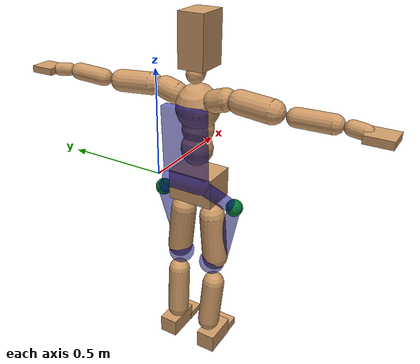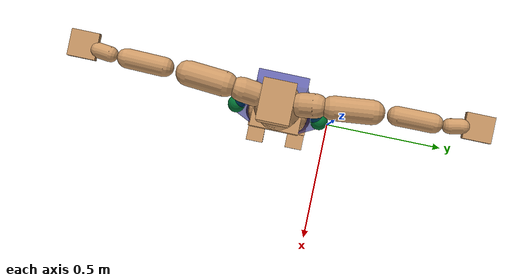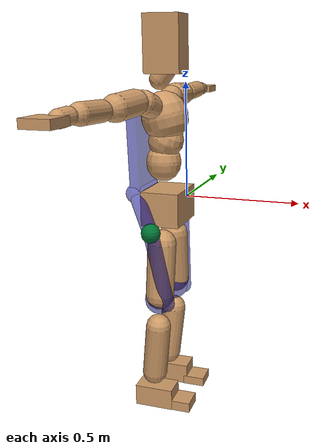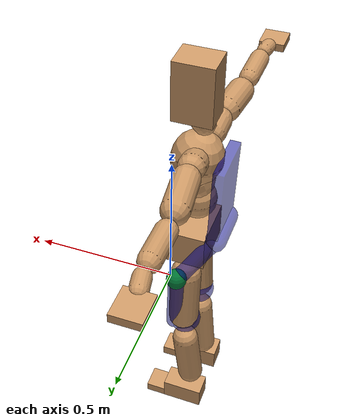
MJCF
<mujoco model="humanoid">
  <compiler coordinate="local" />
  <asset>
    <texture type="skybox" builtin="gradient" rgb1=".4 .5 .6" rgb2="0 0 0" width="100" height="100" />
    <texture builtin="flat" height="1278" mark="cross" markrgb="1 1 1" name="texgeom" random="0.01" rgb1="0.8 0.6 0.4" rgb2="0.8 0.6 0.4" type="cube" width="127" />
    <texture builtin="checker" height="100" name="texplane" rgb1="0 0 0" rgb2="0.8 0.8 0.8" type="2d" width="100" />
    <material name="MatPlane" reflectance="0.5" shininess="1" specular="1" texrepeat="60 60" texture="texplane" />
    <material name="geom" texture="texgeom" texuniform="true" />
  </asset>
  <worldbody>
    <light cutoff="100" diffuse="1 1 1" dir="-0 0 -1.3" directional="true" exponent="1" pos="0 0 1.3" specular=".1 .1 .1" />
    <body name="Pelvis" pos="-0.0018 -0.2233 0.0282">
      <geom type="box" pos="-0.0052 -0.0000 -0.0116" size="0.0790 0.1058 0.0695" quat="1.0000 0.0000 0.0000 0.0000" density="1000" conaffinity="1" condim="3" contype="7" margin="0.001" rgba="0.8 0.6 .4 1" />
      <body name="L_Hip" pos="-0.0082 0.0689 -0.0875">
        <joint name="L_Hip_x" type="hinge" pos="0 0 0" axis="1 0 0" stiffness="800" damping="80" armature="0.02" range="-180.0000 180.0000" limited="true" />
        <joint name="L_Hip_y" type="hinge" pos="0 0 0" axis="0 1 0" stiffness="800" damping="80" armature="0.02" range="-180.0000 180.0000" limited="true" />
        <joint name="L_Hip_z" type="hinge" pos="0 0 0" axis="0 0 1" stiffness="800" damping="80" armature="0.02" range="-180.0000 180.0000" limited="true" />
        <geom type="capsule" contype="1" conaffinity="1" density="2040.816327" fromto="-0.0009 0.0068 -0.0717 -0.0035 0.0270 -0.2869" size="0.0594" condim="3" margin="0.001" rgba="0.8 0.6 .4 1" />
        <body name="L_Knee" pos="-0.0053 0.0304 -0.3551">
          <joint name="L_Knee_x" type="hinge" pos="0 0 0" axis="1 0 0" stiffness="800" damping="80" armature="0.02" range="-180.0000 180.0000" limited="true" />
          <joint name="L_Knee_y" type="hinge" pos="0 0 0" axis="0 1 0" stiffness="800" damping="80" armature="0.02" range="-180.0000 180.0000" limited="true" />
          <joint name="L_Knee_z" type="hinge" pos="0 0 0" axis="0 0 1" stiffness="800" damping="80" armature="0.02" range="-180.0000 180.0000" limited="true" />
          <geom type="capsule" contype="1" conaffinity="1" density="1234.567901" fromto="-0.0083 -0.0026 -0.0742 -0.0333 -0.0106 -0.2968" size="0.0521" condim="3" margin="0.001" rgba="0.8 0.6 .4 1" />
          <body name="L_Ankle" pos="-0.0418 -0.0114 -0.3713">
            <joint name="L_Ankle_x" type="hinge" pos="0 0 0" axis="1 0 0" stiffness="800" damping="80" armature="0.02" range="-180.0000 180.0000" limited="true" />
            <joint name="L_Ankle_y" type="hinge" pos="0 0 0" axis="0 1 0" stiffness="800" damping="80" armature="0.02" range="-180.0000 180.0000" limited="true" />
            <joint name="L_Ankle_z" type="hinge" pos="0 0 0" axis="0 0 1" stiffness="800" damping="80" armature="0.02" range="-180.0000 180.0000" limited="true" />
            <geom type="box" pos="0.0229 0.0216 -0.0225" size="0.0803 0.0449 0.0437" quat="1.0000 0.0000 0.0000 0.0000" density="1000" conaffinity="1" condim="3" contype="7" margin="0.001" rgba="0.8 0.6 .4 1" />
            <body name="L_Toe" pos="0.1120 0.0234 -0.0529">
              <joint name="L_Toe_x" type="hinge" pos="0 0 0" axis="1 0 0" stiffness="500" damping="50" armature="0.02" range="-5.0000 5.0000" limited="true" />
              <joint name="L_Toe_y" type="hinge" pos="0 0 0" axis="0 1 0" stiffness="500" damping="50" armature="0.02" range="-5.0000 5.0000" limited="true" />
              <joint name="L_Toe_z" type="hinge" pos="0 0 0" axis="0 0 1" stiffness="500" damping="50" armature="0.02" range="-5.0000 5.0000" limited="true" />
              <geom type="box" pos="0.0235 -0.0028 0.0052" size="0.0469 0.0452 0.0189" quat="1.0000 0.0000 0.0000 0.0000" density="1000" conaffinity="1" condim="3" contype="7" margin="0.001" rgba="0.8 0.6 .4 1" />
            </body>
          </body>
        </body>
        <geom name="left_hip_motor" type="sphere" size="0.0385" pos="-0.000469 0.118289 0.005255" mass="0.53" contype="0" conaffinity="0" rgba="0.0 0.45 0.2 1" />
        <geom name="left_thigh_box" type="capsule" fromto="0.002551 0.111331 -0.023770 0.033895 0.039115 -0.325029" size="0.030" mass="0.1977" contype="0" conaffinity="0" rgba="0.0 0.0 0.55 0.55" />
        <geom name="left_hip_ring" type="sphere" pos="-0.007284 0.017379 -0.315218" size="0.061500" mass="0.0923" contype="0" conaffinity="0" rgba="0.0 0.0 0.55 0.55" />
      </body>
      <body name="R_Hip" pos="-0.0052 -0.0668 -0.0868">
        <joint name="R_Hip_x" type="hinge" pos="0 0 0" axis="1 0 0" stiffness="800" damping="80" armature="0.02" range="-180.0000 180.0000" limited="true" />
        <joint name="R_Hip_y" type="hinge" pos="0 0 0" axis="0 1 0" stiffness="800" damping="80" armature="0.02" range="-180.0000 180.0000" limited="true" />
        <joint name="R_Hip_z" type="hinge" pos="0 0 0" axis="0 0 1" stiffness="800" damping="80" armature="0.02" range="-180.0000 180.0000" limited="true" />
        <geom type="capsule" contype="1" conaffinity="1" density="2040.816327" fromto="-0.0017 -0.0076 -0.0729 -0.0069 -0.0302 -0.2918" size="0.0589" condim="3" margin="0.001" rgba="0.8 0.6 .4 1" />
        <body name="R_Knee" pos="-0.0081 -0.0351 -0.3612">
          <joint name="R_Knee_x" type="hinge" pos="0 0 0" axis="1 0 0" stiffness="800" damping="80" armature="0.02" range="-180.0000 180.0000" limited="true" />
          <joint name="R_Knee_y" type="hinge" pos="0 0 0" axis="0 1 0" stiffness="800" damping="80" armature="0.02" range="-180.0000 180.0000" limited="true" />
          <joint name="R_Knee_z" type="hinge" pos="0 0 0" axis="0 0 1" stiffness="800" damping="80" armature="0.02" range="-180.0000 180.0000" limited="true" />
          <geom type="capsule" contype="1" conaffinity="1" density="1234.567901" fromto="-0.0082 0.0031 -0.0742 -0.0324 0.0123 -0.2968" size="0.0523" condim="3" margin="0.001" rgba="0.8 0.6 .4 1" />
          <body name="R_Ankle" pos="-0.0403 0.0137 -0.3713">
            <joint name="R_Ankle_x" type="hinge" pos="0 0 0" axis="1 0 0" stiffness="800" damping="80" armature="0.02" range="-180.0000 180.0000" limited="true" />
            <joint name="R_Ankle_y" type="hinge" pos="0 0 0" axis="0 1 0" stiffness="800" damping="80" armature="0.02" range="-180.0000 180.0000" limited="true" />
            <joint name="R_Ankle_z" type="hinge" pos="0 0 0" axis="0 0 1" stiffness="800" damping="80" armature="0.02" range="-180.0000 180.0000" limited="true" />
            <geom type="box" pos="0.0241 -0.0199 -0.0162" size="0.0814 0.0454 0.0446" quat="1.0000 0.0000 0.0000 0.0000" density="1000" conaffinity="1" condim="3" contype="7" margin="0.001" rgba="0.8 0.6 .4 1" />
            <body name="R_Toe" pos="0.1155 -0.0210 -0.0450">
              <joint name="R_Toe_x" type="hinge" pos="0 0 0" axis="1 0 0" stiffness="500" damping="50" armature="0.02" range="-5.0000 5.0000" limited="true" />
              <joint name="R_Toe_y" type="hinge" pos="0 0 0" axis="0 1 0" stiffness="500" damping="50" armature="0.02" range="-5.0000 5.0000" limited="true" />
              <joint name="R_Toe_z" type="hinge" pos="0 0 0" axis="0 0 1" stiffness="500" damping="50" armature="0.02" range="-5.0000 5.0000" limited="true" />
              <geom type="box" pos="0.0214 0.0040 0.0044" size="0.0464 0.0451 0.0210" quat="1.0000 0.0000 0.0000 0.0000" density="1000" conaffinity="1" condim="3" contype="7" margin="0.001" rgba="0.8 0.6 .4 1" />
            </body>
          </body>
        </body>
        <geom name="right_hip_motor" type="sphere" size="0.0385" pos="-0.005199 -0.119211 0.003827" mass="0.53" contype="0" conaffinity="0" rgba="0.0 0.45 0.2 1" />
        <geom name="right_thigh_box" type="capsule" fromto="-0.002132 -0.112377 -0.025223 0.029619 -0.041620 -0.325993" size="0.030" mass="0.1977" contype="0" conaffinity="0" rgba="0.0 0.0 0.55 0.55" />
        <geom name="right_hip_ring" type="sphere" pos="-0.013104 -0.018825 -0.316393" size="0.060600" mass="0.0923" contype="0" conaffinity="0" rgba="0.0 0.0 0.55 0.55" />
      </body>
      <body name="Torso" pos="-0.0213 -0.0024 0.1013">
        <joint name="Torso_x" type="hinge" pos="0 0 0" axis="1 0 0" stiffness="1000" damping="100" armature="0.02" range="-180.0000 180.0000" limited="true" />
        <joint name="Torso_y" type="hinge" pos="0 0 0" axis="0 1 0" stiffness="1000" damping="100" armature="0.02" range="-180.0000 180.0000" limited="true" />
        <joint name="Torso_z" type="hinge" pos="0 0 0" axis="0 0 1" stiffness="1000" damping="100" armature="0.02" range="-180.0000 180.0000" limited="true" />
        <geom type="capsule" contype="1" conaffinity="1" density="2040.816327" fromto="0.0005 0.0023 0.0562 0.0006 0.0028 0.0687" size="0.0704" condim="3" margin="0.001" rgba="0.8 0.6 .4 1" />
        <body name="Spine" pos="-0.0006 0.0039 0.1266">
          <joint name="Spine_x" type="hinge" pos="0 0 0" axis="1 0 0" stiffness="1000" damping="100" armature="0.02" range="-180.0000 180.0000" limited="true" />
          <joint name="Spine_y" type="hinge" pos="0 0 0" axis="0 1 0" stiffness="1000" damping="100" armature="0.02" range="-180.0000 180.0000" limited="true" />
          <joint name="Spine_z" type="hinge" pos="0 0 0" axis="0 0 1" stiffness="1000" damping="100" armature="0.02" range="-180.0000 180.0000" limited="true" />
          <geom type="capsule" contype="1" conaffinity="1" density="2040.816327" fromto="0.0109 0.0006 0.0218 0.0133 0.0007 0.0267" size="0.0708" condim="3" margin="0.001" rgba="0.8 0.6 .4 1" />
          <body name="Chest" pos="0.0262 0.0020 0.0486">
            <joint name="Chest_x" type="hinge" pos="0 0 0" axis="1 0 0" stiffness="1000" damping="100" armature="0.02" range="-180.0000 180.0000" limited="true" />
            <joint name="Chest_y" type="hinge" pos="0 0 0" axis="0 1 0" stiffness="1000" damping="100" armature="0.02" range="-180.0000 180.0000" limited="true" />
            <joint name="Chest_z" type="hinge" pos="0 0 0" axis="0 0 1" stiffness="1000" damping="100" armature="0.02" range="-180.0000 180.0000" limited="true" />
            <geom type="capsule" contype="1" conaffinity="1" density="2040.816327" fromto="-0.0168 -0.0008 0.0643 -0.0206 -0.0009 0.0785" size="0.0941" condim="3" margin="0.001" rgba="0.8 0.6 .4 1" />
            <body name="Neck" pos="-0.0473 -0.0022 0.2024">
              <joint name="Neck_x" type="hinge" pos="0 0 0" axis="1 0 0" stiffness="500" damping="50" armature="0.02" range="-180.0000 180.0000" limited="true" />
              <joint name="Neck_y" type="hinge" pos="0 0 0" axis="0 1 0" stiffness="500" damping="50" armature="0.02" range="-180.0000 180.0000" limited="true" />
              <joint name="Neck_z" type="hinge" pos="0 0 0" axis="0 0 1" stiffness="500" damping="50" armature="0.02" range="-180.0000 180.0000" limited="true" />
              <geom type="capsule" contype="1" conaffinity="1" density="1000" fromto="0.0095 0.0009 0.0126 0.0378 0.0038 0.0502" size="0.0401" condim="3" margin="0.001" rgba="0.8 0.6 .4 1" />
              <body name="Head" pos="0.0491 0.0039 0.0615">
                <joint name="Head_x" type="hinge" pos="0 0 0" axis="1 0 0" stiffness="500" damping="50" armature="0.02" range="-180.0000 180.0000" limited="true" />
                <joint name="Head_y" type="hinge" pos="0 0 0" axis="0 1 0" stiffness="500" damping="50" armature="0.02" range="-180.0000 180.0000" limited="true" />
                <joint name="Head_z" type="hinge" pos="0 0 0" axis="0 0 1" stiffness="500" damping="50" armature="0.02" range="-180.0000 180.0000" limited="true" />
                <geom type="box" pos="-0.0111 -0.0040 0.0843" size="0.0730 0.0579 0.1110" quat="1.0000 0.0000 0.0000 0.0000" density="1000" conaffinity="1" condim="3" contype="7" margin="0.001" rgba="0.8 0.6 .4 1" />
              </body>
            </body>
            <body name="L_Thorax" pos="-0.0353 0.0738 0.1148">
              <joint name="L_Thorax_x" type="hinge" pos="0 0 0" axis="1 0 0" stiffness="500" damping="50" armature="0.02" range="-180.0000 180.0000" limited="true" />
              <joint name="L_Thorax_y" type="hinge" pos="0 0 0" axis="0 1 0" stiffness="500" damping="50" armature="0.02" range="-180.0000 180.0000" limited="true" />
              <joint name="L_Thorax_z" type="hinge" pos="0 0 0" axis="0 0 1" stiffness="500" damping="50" armature="0.02" range="-180.0000 180.0000" limited="true" />
              <geom type="capsule" contype="1" conaffinity="1" density="1000" fromto="-0.0017 0.0166 0.0056 -0.0066 0.0665 0.0224" size="0.0483" condim="3" margin="0.001" rgba="0.8 0.6 .4 1" />
              <body name="L_Shoulder" pos="-0.0072 0.0847 0.0304">
                <joint name="L_Shoulder_x" type="hinge" pos="0 0 0" axis="1 0 0" stiffness="500" damping="50" armature="0.02" range="-180.0000 180.0000" limited="true" />
                <joint name="L_Shoulder_y" type="hinge" pos="0 0 0" axis="0 1 0" stiffness="500" damping="50" armature="0.02" range="-180.0000 180.0000" limited="true" />
                <joint name="L_Shoulder_z" type="hinge" pos="0 0 0" axis="0 0 1" stiffness="500" damping="50" armature="0.02" range="-180.0000 180.0000" limited="true" />
                <geom type="capsule" contype="1" conaffinity="1" density="1000" fromto="-0.0051 0.0491 -0.0024 -0.0206 0.1967 -0.0095" size="0.0483" condim="3" margin="0.001" rgba="0.8 0.6 .4 1" />
                <body name="L_Elbow" pos="-0.0262 0.2445 -0.0108">
                  <joint name="L_Elbow_x" type="hinge" pos="0 0 0" axis="1 0 0" stiffness="500" damping="50" armature="0.02" range="-180.0000 180.0000" limited="true" />
                  <joint name="L_Elbow_y" type="hinge" pos="0 0 0" axis="0 1 0" stiffness="500" damping="50" armature="0.02" range="-180.0000 180.0000" limited="true" />
                  <joint name="L_Elbow_z" type="hinge" pos="0 0 0" axis="0 0 1" stiffness="500" damping="50" armature="0.02" range="-180.0000 180.0000" limited="true" />
                  <geom type="capsule" contype="1" conaffinity="1" density="1000" fromto="-0.0002 0.0463 0.0017 -0.0008 0.1852 0.0067" size="0.0378" condim="3" margin="0.001" rgba="0.8 0.6 .4 1" />
                  <body name="L_Wrist" pos="-0.0006 0.2323 0.0083">
                    <joint name="L_Wrist_x" type="hinge" pos="0 0 0" axis="1 0 0" stiffness="300" damping="30" armature="0.02" range="-180.0000 180.0000" limited="true" />
                    <joint name="L_Wrist_y" type="hinge" pos="0 0 0" axis="0 1 0" stiffness="300" damping="30" armature="0.02" range="-180.0000 180.0000" limited="true" />
                    <joint name="L_Wrist_z" type="hinge" pos="0 0 0" axis="0 0 1" stiffness="300" damping="30" armature="0.02" range="-180.0000 180.0000" limited="true" />
                    <geom type="capsule" contype="1" conaffinity="1" density="1000" fromto="-0.0028 0.0157 -0.0015 -0.0110 0.0630 -0.0062" size="0.0297" condim="3" margin="0.001" rgba="0.8 0.6 .4 1" />
                    <body name="L_Hand" pos="-0.0131 0.0782 -0.0092">
                      <joint name="L_Hand_x" type="hinge" pos="0 0 0" axis="1 0 0" stiffness="300" damping="30" armature="0.02" range="-5.0000 5.0000" limited="true" />
                      <joint name="L_Hand_y" type="hinge" pos="0 0 0" axis="0 1 0" stiffness="300" damping="30" armature="0.02" range="-5.0000 5.0000" limited="true" />
                      <joint name="L_Hand_z" type="hinge" pos="0 0 0" axis="0 0 1" stiffness="300" damping="30" armature="0.02" range="-5.0000 5.0000" limited="true" />
                      <geom type="box" pos="-0.0054 0.0466 0.0009" size="0.0504 0.0553 0.0149" quat="1.0000 0.0000 0.0000 0.0000" density="1000" conaffinity="1" condim="3" contype="7" margin="0.001" rgba="0.8 0.6 .4 1" />
                    </body>
                  </body>
                </body>
              </body>
            </body>
            <body name="R_Thorax" pos="-0.0400 -0.0759 0.1126">
              <joint name="R_Thorax_x" type="hinge" pos="0 0 0" axis="1 0 0" stiffness="500" damping="50" armature="0.02" range="-180.0000 180.0000" limited="true" />
              <joint name="R_Thorax_y" type="hinge" pos="0 0 0" axis="0 1 0" stiffness="500" damping="50" armature="0.02" range="-180.0000 180.0000" limited="true" />
              <joint name="R_Thorax_z" type="hinge" pos="0 0 0" axis="0 0 1" stiffness="500" damping="50" armature="0.02" range="-180.0000 180.0000" limited="true" />
              <geom type="capsule" contype="1" conaffinity="1" density="1000" fromto="-0.0017 -0.0177 0.0060 -0.0068 -0.0706 0.0239" size="0.0479" condim="3" margin="0.001" rgba="0.8 0.6 .4 1" />
              <body name="R_Shoulder" pos="-0.0096 -0.0886 0.0316">
                <joint name="R_Shoulder_x" type="hinge" pos="0 0 0" axis="1 0 0" stiffness="500" damping="50" armature="0.02" range="-180.0000 180.0000" limited="true" />
                <joint name="R_Shoulder_y" type="hinge" pos="0 0 0" axis="0 1 0" stiffness="500" damping="50" armature="0.02" range="-180.0000 180.0000" limited="true" />
                <joint name="R_Shoulder_z" type="hinge" pos="0 0 0" axis="0 0 1" stiffness="500" damping="50" armature="0.02" range="-180.0000 180.0000" limited="true" />
                <geom type="capsule" contype="1" conaffinity="1" density="1000" fromto="-0.0040 -0.0478 -0.0025 -0.0158 -0.1912 -0.0100" size="0.0497" condim="3" margin="0.001" rgba="0.8 0.6 .4 1" />
                <body name="R_Elbow" pos="-0.0191 -0.2389 -0.0119">
                  <joint name="R_Elbow_x" type="hinge" pos="0 0 0" axis="1 0 0" stiffness="500" damping="50" armature="0.02" range="-180.0000 180.0000" limited="true" />
                  <joint name="R_Elbow_y" type="hinge" pos="0 0 0" axis="0 1 0" stiffness="500" damping="50" armature="0.02" range="-180.0000 180.0000" limited="true" />
                  <joint name="R_Elbow_z" type="hinge" pos="0 0 0" axis="0 0 1" stiffness="500" damping="50" armature="0.02" range="-180.0000 180.0000" limited="true" />
                  <geom type="capsule" contype="1" conaffinity="1" density="1000" fromto="-0.0010 -0.0477 0.0015 -0.0041 -0.1905 0.0058" size="0.0379" condim="3" margin="0.001" rgba="0.8 0.6 .4 1" />
                  <body name="R_Wrist" pos="-0.0040 -0.2392 0.0079">
                    <joint name="R_Wrist_x" type="hinge" pos="0 0 0" axis="1 0 0" stiffness="300" damping="30" armature="0.02" range="-180.0000 180.0000" limited="true" />
                    <joint name="R_Wrist_y" type="hinge" pos="0 0 0" axis="0 1 0" stiffness="300" damping="30" armature="0.02" range="-180.0000 180.0000" limited="true" />
                    <joint name="R_Wrist_z" type="hinge" pos="0 0 0" axis="0 0 1" stiffness="300" damping="30" armature="0.02" range="-180.0000 180.0000" limited="true" />
                    <geom type="capsule" contype="1" conaffinity="1" density="1000" fromto="-0.0019 -0.0161 -0.0011 -0.0076 -0.0644 -0.0047" size="0.0299" condim="3" margin="0.001" rgba="0.8 0.6 .4 1" />
                    <body name="R_Hand" pos="-0.0101 -0.0789 -0.0069">
                      <joint name="R_Hand_x" type="hinge" pos="0 0 0" axis="1 0 0" stiffness="300" damping="30" armature="0.02" range="-5.0000 5.0000" limited="true" />
                      <joint name="R_Hand_y" type="hinge" pos="0 0 0" axis="0 1 0" stiffness="300" damping="30" armature="0.02" range="-5.0000 5.0000" limited="true" />
                      <joint name="R_Hand_z" type="hinge" pos="0 0 0" axis="0 0 1" stiffness="300" damping="30" armature="0.02" range="-5.0000 5.0000" limited="true" />
                      <geom type="box" pos="-0.0074 -0.0436 -0.0008" size="0.0510 0.0537 0.0154" quat="1.0000 0.0000 0.0000 0.0000" density="1000" conaffinity="1" condim="3" contype="7" margin="0.001" rgba="0.8 0.6 .4 1" />
                    </body>
                  </body>
                </body>
              </body>
            </body>
          </body>
        </body>
      </body>
      <joint type="free" name="Pelvis" limited="false" actuatorfrclimited="false" />
      <geom name="waist_hip_bar" type="capsule" fromto="-0.1166 -0.074 0.0436 -0.1166 0.074 0.0436" size="0.040" mass="0.9389" contype="0" conaffinity="0" rgba="0.0 0.0 0.55 0.55" />
      <geom name="waist_hip_arm_l" type="capsule" fromto="-0.007269 0.187789 -0.086145 -0.116600 0.074000 0.043600" size="0.030" mass="0.3756" contype="0" conaffinity="0" rgba="0.0 0.0 0.55 0.55" />
      <geom name="waist_hip_arm_r" type="capsule" fromto="-0.009499 -0.186911 -0.086673 -0.116600 -0.074000 0.043600" size="0.030" mass="0.3756" contype="0" conaffinity="0" rgba="0.0 0.0 0.55 0.55" />
      <geom name="exo_main_col" type="box" size="0.020000 0.100000 0.160452" pos="-0.114674 0.002139 0.212481" quat="0.99987008 -0.00439565 -0.01550794 -0.00006818" mass="1.37" contype="0" conaffinity="0" rgba="0.0 0.0 0.55 0.55" />
    </body>
  </worldbody>
  <actuator>
    <motor name="L_Hip_x" joint="L_Hip_x" gear="500" />
    <motor name="L_Hip_y" joint="L_Hip_y" gear="500" />
    <motor name="L_Hip_z" joint="L_Hip_z" gear="500" />
    <motor name="L_Knee_x" joint="L_Knee_x" gear="500" />
    <motor name="L_Knee_y" joint="L_Knee_y" gear="500" />
    <motor name="L_Knee_z" joint="L_Knee_z" gear="500" />
    <motor name="L_Ankle_x" joint="L_Ankle_x" gear="500" />
    <motor name="L_Ankle_y" joint="L_Ankle_y" gear="500" />
    <motor name="L_Ankle_z" joint="L_Ankle_z" gear="500" />
    <motor name="L_Toe_x" joint="L_Toe_x" gear="500" />
    <motor name="L_Toe_y" joint="L_Toe_y" gear="500" />
    <motor name="L_Toe_z" joint="L_Toe_z" gear="500" />
    <motor name="R_Hip_x" joint="R_Hip_x" gear="500" />
    <motor name="R_Hip_y" joint="R_Hip_y" gear="500" />
    <motor name="R_Hip_z" joint="R_Hip_z" gear="500" />
    <motor name="R_Knee_x" joint="R_Knee_x" gear="500" />
    <motor name="R_Knee_y" joint="R_Knee_y" gear="500" />
    <motor name="R_Knee_z" joint="R_Knee_z" gear="500" />
    <motor name="R_Ankle_x" joint="R_Ankle_x" gear="500" />
    <motor name="R_Ankle_y" joint="R_Ankle_y" gear="500" />
    <motor name="R_Ankle_z" joint="R_Ankle_z" gear="500" />
    <motor name="R_Toe_x" joint="R_Toe_x" gear="500" />
    <motor name="R_Toe_y" joint="R_Toe_y" gear="500" />
    <motor name="R_Toe_z" joint="R_Toe_z" gear="500" />
    <motor name="Torso_x" joint="Torso_x" gear="500" />
    <motor name="Torso_y" joint="Torso_y" gear="500" />
    <motor name="Torso_z" joint="Torso_z" gear="500" />
    <motor name="Spine_x" joint="Spine_x" gear="500" />
    <motor name="Spine_y" joint="Spine_y" gear="500" />
    <motor name="Spine_z" joint="Spine_z" gear="500" />
    <motor name="Chest_x" joint="Chest_x" gear="500" />
    <motor name="Chest_y" joint="Chest_y" gear="500" />
    <motor name="Chest_z" joint="Chest_z" gear="500" />
    <motor name="Neck_x" joint="Neck_x" gear="500" />
    <motor name="Neck_y" joint="Neck_y" gear="500" />
    <motor name="Neck_z" joint="Neck_z" gear="500" />
    <motor name="Head_x" joint="Head_x" gear="500" />
    <motor name="Head_y" joint="Head_y" gear="500" />
    <motor name="Head_z" joint="Head_z" gear="500" />
    <motor name="L_Thorax_x" joint="L_Thorax_x" gear="500" />
    <motor name="L_Thorax_y" joint="L_Thorax_y" gear="500" />
    <motor name="L_Thorax_z" joint="L_Thorax_z" gear="500" />
    <motor name="L_Shoulder_x" joint="L_Shoulder_x" gear="500" />
    <motor name="L_Shoulder_y" joint="L_Shoulder_y" gear="500" />
    <motor name="L_Shoulder_z" joint="L_Shoulder_z" gear="500" />
    <motor name="L_Elbow_x" joint="L_Elbow_x" gear="500" />
    <motor name="L_Elbow_y" joint="L_Elbow_y" gear="500" />
    <motor name="L_Elbow_z" joint="L_Elbow_z" gear="500" />
    <motor name="L_Wrist_x" joint="L_Wrist_x" gear="500" />
    <motor name="L_Wrist_y" joint="L_Wrist_y" gear="500" />
    <motor name="L_Wrist_z" joint="L_Wrist_z" gear="500" />
    <motor name="L_Hand_x" joint="L_Hand_x" gear="500" />
    <motor name="L_Hand_y" joint="L_Hand_y" gear="500" />
    <motor name="L_Hand_z" joint="L_Hand_z" gear="500" />
    <motor name="R_Thorax_x" joint="R_Thorax_x" gear="500" />
    <motor name="R_Thorax_y" joint="R_Thorax_y" gear="500" />
    <motor name="R_Thorax_z" joint="R_Thorax_z" gear="500" />
    <motor name="R_Shoulder_x" joint="R_Shoulder_x" gear="500" />
    <motor name="R_Shoulder_y" joint="R_Shoulder_y" gear="500" />
    <motor name="R_Shoulder_z" joint="R_Shoulder_z" gear="500" />
    <motor name="R_Elbow_x" joint="R_Elbow_x" gear="500" />
    <motor name="R_Elbow_y" joint="R_Elbow_y" gear="500" />
    <motor name="R_Elbow_z" joint="R_Elbow_z" gear="500" />
    <motor name="R_Wrist_x" joint="R_Wrist_x" gear="500" />
    <motor name="R_Wrist_y" joint="R_Wrist_y" gear="500" />
    <motor name="R_Wrist_z" joint="R_Wrist_z" gear="500" />
    <motor name="R_Hand_x" joint="R_Hand_x" gear="500" />
    <motor name="R_Hand_y" joint="R_Hand_y" gear="500" />
    <motor name="R_Hand_z" joint="R_Hand_z" gear="500" />
    <motor name="exo_hip_l" joint="L_Hip_y" gear="23.7" ctrllimited="true" ctrlrange="-1 1" />
    <motor name="exo_hip_r" joint="R_Hip_y" gear="23.7" ctrllimited="true" ctrlrange="-1 1" />
  </actuator>
  <contact>
    <exclude body1="Torso" body2="Chest" />
    <exclude body1="Head" body2="Chest" />
    <exclude body1="R_Knee" body2="R_Toe" />
    <exclude body1="R_Knee" body2="L_Ankle" />
    <exclude body1="R_Knee" body2="L_Toe" />
    <exclude body1="L_Knee" body2="L_Toe" />
    <exclude body1="L_Knee" body2="R_Ankle" />
    <exclude body1="L_Knee" body2="R_Toe" />
    <exclude body1="L_Shoulder" body2="Chest" />
    <exclude body1="R_Shoulder" body2="Chest" />
  </contact>
  <sensor />
  <size njmax="700" nconmax="700" />
</mujoco>
